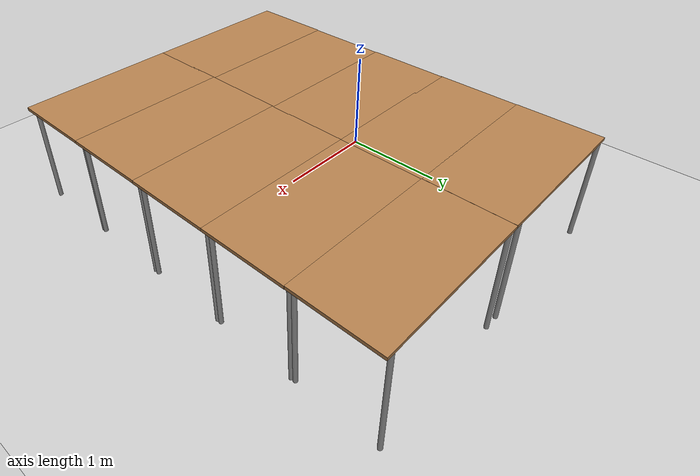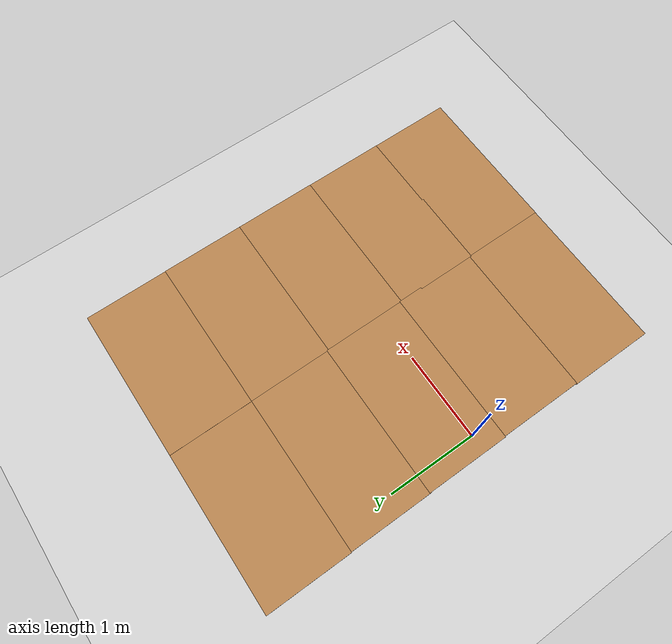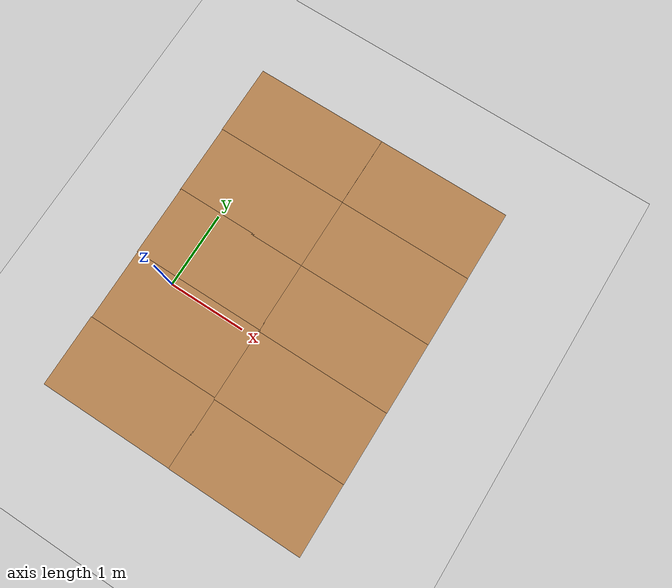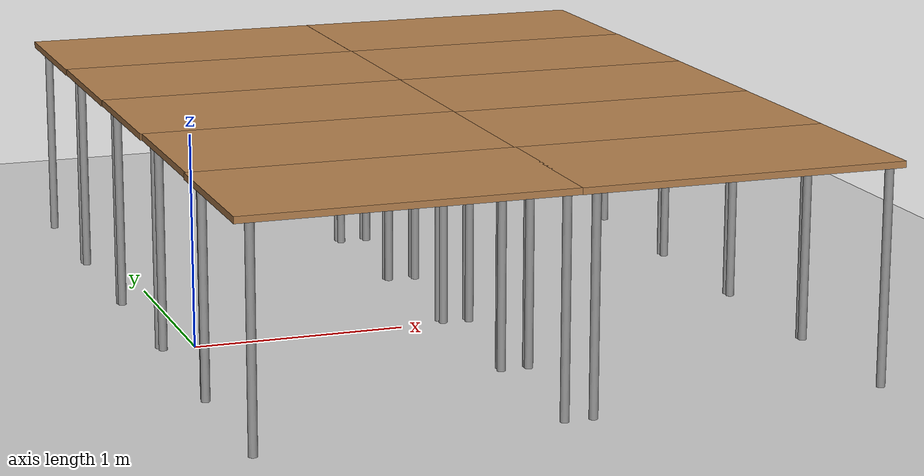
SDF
<sdf version='1.10'>
  <world name='custom_eight_table_world'>
    <physics name='1ms' type='ignored'>
      <max_step_size>0.001</max_step_size>
      <real_time_factor>1</real_time_factor>
      <real_time_update_rate>1000</real_time_update_rate>
    </physics>
    <plugin name='gz::sim::systems::Physics' filename='gz-sim-physics-system'/>
    <plugin name='gz::sim::systems::UserCommands' filename='gz-sim-user-commands-system'/>
    <plugin name='gz::sim::systems::SceneBroadcaster' filename='gz-sim-scene-broadcaster-system'/>
    <plugin name='gz::sim::systems::Contact' filename='gz-sim-contact-system'/>
    <gravity>0 0 -9.8000000000000007</gravity>
    <magnetic_field>5.5644999999999998e-06 2.2875799999999999e-05 -4.2388400000000002e-05</magnetic_field>
    <atmosphere type='adiabatic'/>
    <scene>
      <ambient>0.400000006 0.400000006 0.400000006 1</ambient>
      <background>0.699999988 0.699999988 0.699999988 1</background>
      <shadows>true</shadows>
    </scene>
    <model name='ground_plane'>
      <static>true</static>
      <link name='link'>
        <collision name='collision'>
          <geometry>
            <plane>
              <normal>0 0 1</normal>
              <size>100 100</size>
            </plane>
          </geometry>
          <surface>
            <friction>
              <ode/>
            </friction>
            <bounce/>
            <contact/>
          </surface>
        </collision>
        <visual name='visual'>
          <geometry>
            <plane>
              <normal>0 0 1</normal>
              <size>100 100</size>
            </plane>
          </geometry>
          <material>
            <ambient>0.800000012 0.800000012 0.800000012 1</ambient>
            <diffuse>0.800000012 0.800000012 0.800000012 1</diffuse>
            <specular>0.800000012 0.800000012 0.800000012 1</specular>
          </material>
        </visual>
        <pose>0 0 0 0 0 0</pose>
        <inertial>
          <pose>0 0 0 0 0 0</pose>
          <mass>1</mass>
          <inertia>
            <ixx>1</ixx>
            <ixy>0</ixy>
            <ixz>0</ixz>
            <iyy>1</iyy>
            <iyz>0</iyz>
            <izz>1</izz>
          </inertia>
        </inertial>
        <enable_wind>false</enable_wind>
      </link>
      <pose>0 0 0 0 0 0</pose>
      <self_collide>false</self_collide>
    </model>
    <include>
      <uri>file:///home/afsalu-rahman-c/gazebo_models/Table</uri>
      <name>Table</name>
      <pose>2.0171710358480892 -0.38719488853304806 0 0 0 0</pose>
    </include>
    <include>
      <uri>file:///home/afsalu-rahman-c/gazebo_models/Table</uri>
      <name>Table_0</name>
      <pose>2.0190181903873019 0.41195143767342857 0 0 0 0</pose>
    </include>
    <include>
      <uri>file:///home/afsalu-rahman-c/gazebo_models/Table</uri>
      <name>Table_1</name>
      <pose>2.0157901873386024 -1.1732730246281218 0 0 0 0</pose>
    </include>
    <include>
      <uri>file:///home/afsalu-rahman-c/gazebo_models/Table</uri>
      <name>Table_2</name>
      <pose>2.0191293631455487 1.2113047349492549 0 0 0 0</pose>
    </include>
    <include>
      <uri>file:///home/afsalu-rahman-c/gazebo_models/Table</uri>
      <name>Table_4</name>
      <pose>2.0166431277318351 2.0089970818488245 0 0 0 0</pose>
    </include>
    <include>
      <uri>file:///home/afsalu-rahman-c/gazebo_models/Table</uri>
      <name>Table_3</name>
      <pose>0.51613447199719631 2.008875856695139 0 0 0 0</pose>
    </include>
    <include>
      <uri>file:///home/afsalu-rahman-c/gazebo_models/Table</uri>
      <name>Table_5</name>
      <pose>0.52096322402806161 1.2120850500275906 0 0 0 0</pose>
    </include>
    <include>
      <uri>file:///home/afsalu-rahman-c/gazebo_models/Table</uri>
      <name>Table_6</name>
      <pose>0.52532500028610229 0.42727038264274597 0 0 0 0</pose>
    </include>
    <include>
      <uri>file:///home/afsalu-rahman-c/gazebo_models/Table</uri>
      <name>Table_7</name>
      <pose>0.53255301713943481 -0.37204191088676453 0 0 0 0</pose>
    </include>
    <include>
      <uri>file:///home/afsalu-rahman-c/gazebo_models/Table</uri>
      <name>Table_8</name>
      <pose>0.52547543444177225 -1.1708331307414976 0 0 0 0</pose>
    </include>
    <light name='sun' type='directional'>
      <pose>0 0 10 0 0 0</pose>
      <cast_shadows>true</cast_shadows>
      <intensity>1</intensity>
      <direction>-0.5 0.10000000000000001 -0.90000000000000002</direction>
      <diffuse>0.800000012 0.800000012 0.800000012 1</diffuse>
      <specular>0.200000003 0.200000003 0.200000003 1</specular>
      <attenuation>
        <range>1000</range>
        <linear>0.01</linear>
        <constant>0.90000000000000002</constant>
        <quadratic>0.001</quadratic>
      </attenuation>
      <spot>
        <inner_angle>0</inner_angle>
        <outer_angle>0</outer_angle>
        <falloff>0</falloff>
      </spot>
    </light>
  </world>
</sdf>

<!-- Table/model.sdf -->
<sdf version="1.5">
  <model name="Table">
    <static>true</static>
    <link name="link">
      <collision name="surface">
        <pose>0 0 1.0 0 0 0</pose>
        <geometry>
          <box>
            <size>1.5 0.8 0.03</size>
          </box>
        </geometry>
        <surface>
          <friction>
            <ode>
              <mu>0.6</mu>
              <mu2>0.6</mu2>
            </ode>
          </friction>
        </surface>
      </collision>
      <visual name="visual1">
        <pose>0 0 1.0 0 0 0</pose>
        <geometry>
          <box>
            <size>1.5 0.8 0.03</size>
          </box>
        </geometry>
        <material>
          <diffuse>1.0 1.0 1.0</diffuse>
          <script>
            <uri>file://media/materials/scripts/gazebo.material</uri>
            <name>Gazebo/Wood</name>
          </script>

          <pbr>
            <metal>
              <albedo_map>model://Table/Table_Diffuse.jpg</albedo_map>
            </metal>
          </pbr>
        </material>
      </visual>
      <collision name="front_left_leg">
        <pose>0.68 0.38 0.5 0 0 0</pose>
        <geometry>
          <cylinder>
            <radius>0.02</radius>
            <length>1.0</length>
          </cylinder>
        </geometry>
      </collision>
      <visual name="front_left_leg">
        <pose>0.68 0.38 0.5 0 0 0</pose>
        <geometry>
          <cylinder>
            <radius>0.02</radius>
            <length>1.0</length>
          </cylinder>
        </geometry>
        <material>
          <diffuse>0.5 0.5 0.5</diffuse>
          <script>
            <uri>file://media/materials/scripts/gazebo.material</uri>
            <name>Gazebo/Grey</name>
          </script>
        </material>
      </visual>
      <collision name="front_right_leg">
        <pose>0.68 -0.38 0.5 0 0 0</pose>
        <geometry>
          <cylinder>
            <radius>0.02</radius>
            <length>1.0</length>
          </cylinder>
        </geometry>
      </collision>
      <visual name="front_right_leg">
        <pose>0.68 -0.38 0.5 0 0 0</pose>
        <geometry>
          <cylinder>
            <radius>0.02</radius>
            <length>1.0</length>
          </cylinder>
        </geometry>
        <material>
          <diffuse>0.5 0.5 0.5</diffuse>
          <script>
            <uri>file://media/materials/scripts/gazebo.material</uri>
            <name>Gazebo/Grey</name>
          </script>
        </material>
      </visual>
      <collision name="back_right_leg">
        <pose>-0.68 -0.38 0.5 0 0 0</pose>
        <geometry>
          <cylinder>
            <radius>0.02</radius>
            <length>1.0</length>
          </cylinder>
        </geometry>
      </collision>
      <visual name="back_right_leg">
        <pose>-0.68 -0.38 0.5 0 0 0</pose>
        <geometry>
          <cylinder>
            <radius>0.02</radius>
            <length>1.0</length>
          </cylinder>
        </geometry>
        <material>
          <diffuse>0.5 0.5 0.5</diffuse>
          <script>
            <uri>file://media/materials/scripts/gazebo.material</uri>
            <name>Gazebo/Grey</name>
          </script>
        </material>
      </visual>
      <collision name="back_left_leg">
        <pose>-0.68 0.38 0.5 0 0 0</pose>
        <geometry>
          <cylinder>
            <radius>0.02</radius>
            <length>1.0</length>
          </cylinder>
        </geometry>
      </collision>
      <visual name="back_left_leg">
        <pose>-0.68 0.38 0.5 0 0 0</pose>
        <geometry>
          <cylinder>
            <radius>0.02</radius>
            <length>1.0</length>
          </cylinder>
        </geometry>
        <material>
          <diffuse>0.5 0.5 0.5</diffuse>
          <script>
            <uri>file://media/materials/scripts/gazebo.material</uri>
            <name>Gazebo/Grey</name>
          </script>
        </material>
      </visual>
    </link>
  </model>
</sdf>
